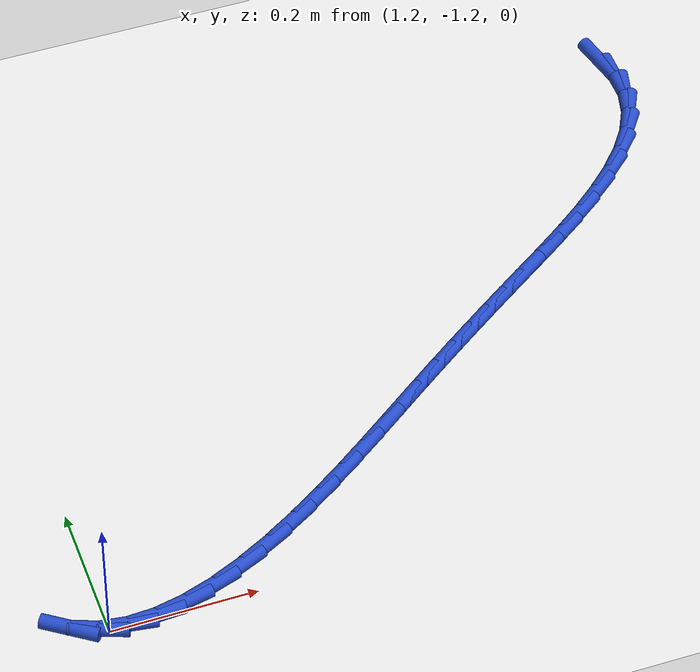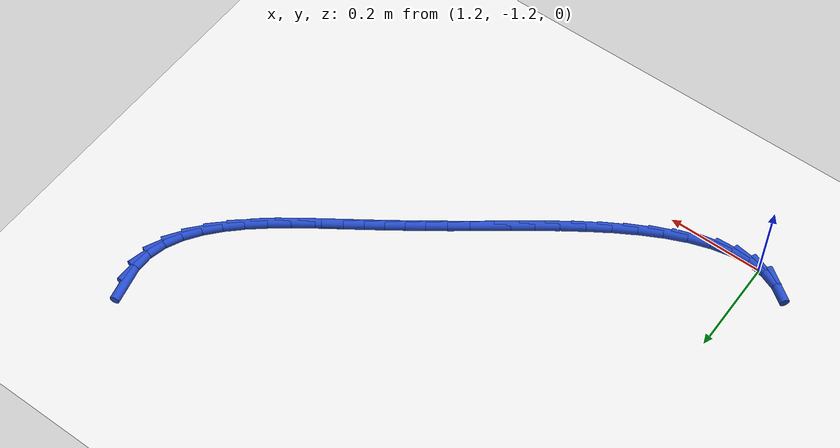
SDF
<sdf version="1.6">
 <world name="default">
  <model name="ground_plane">
   <static>1</static>
   <link name="link">
    <collision name="collision">
     <geometry><plane><normal>0 0 1</normal><size>100 100</size></plane></geometry>
     <surface><friction><ode><mu>100</mu><mu2>50</mu2></ode></friction></surface>
    </collision>
    <visual name="visual">
     <cast_shadows>0</cast_shadows>
     <geometry><plane><normal>0 0 1</normal><size>100 100</size></plane></geometry>
     <material>
      <script><uri>file://media/materials/scripts/gazebo.material</uri><name>Gazebo/WhiteGlow</name></script>
     </material>
    </visual>
   </link>
  </model>
  <model name="line">
   <link name="link_116">
    <pose>2.1670800201792626 -0.4434322571170949 0.01 0 1.57 -1.346856563586588</pose>
    <collision name="collision">
     <geometry><cylinder><radius>0.01</radius><length>0.08</length></cylinder></geometry>
    </collision>
    <visual name="visual">
     <material>
      <script><name>Gazebo/Blue</name><uri>file://media/materials/scripts/gazebo.material</uri></script>
     </material>
     <geometry><cylinder><radius>0.01</radius><length>0.08</length></cylinder></geometry>
    </visual>
   </link>
   <link name="link_117">
    <pose>2.175957787531275 -0.48241088655542563 0.01 0 1.57 -1.5677325985430732</pose>
    <collision name="collision">
     <geometry><cylinder><radius>0.01</radius><length>0.08</length></cylinder></geometry>
    </collision>
    <visual name="visual">
     <material>
      <script><name>Gazebo/Blue</name><uri>file://media/materials/scripts/gazebo.material</uri></script>
     </material>
     <geometry><cylinder><radius>0.01</radius><length>0.08</length></cylinder></geometry>
    </visual>
   </link>
   <link name="link_118">
    <pose>2.1760734694313926 -0.520169306579134 0.01 0 1.57 1.3279155796091364</pose>
    <collision name="collision">
     <geometry><cylinder><radius>0.01</radius><length>0.08</length></cylinder></geometry>
    </collision>
    <visual name="visual">
     <material>
      <script><name>Gazebo/Blue</name><uri>file://media/materials/scripts/gazebo.material</uri></script>
     </material>
     <geometry><cylinder><radius>0.01</radius><length>0.08</length></cylinder></geometry>
    </visual>
   </link>
   <link name="link_119">
    <pose>2.1670470985862735 -0.5565994364035607 0.01 0 1.57 1.1212581006713946</pose>
    <collision name="collision">
     <geometry><cylinder><radius>0.01</radius><length>0.08</length></cylinder></geometry>
    </collision>
    <visual name="visual">
     <material>
      <script><name>Gazebo/Blue</name><uri>file://media/materials/scripts/gazebo.material</uri></script>
     </material>
     <geometry><cylinder><radius>0.01</radius><length>0.08</length></cylinder></geometry>
    </visual>
   </link>
   <link name="link_120">
    <pose>2.1501119889779017 -0.5916991518009619 0.01 0 1.57 0.9608671922395416</pose>
    <collision name="collision">
     <geometry><cylinder><radius>0.01</radius><length>0.08</length></cylinder></geometry>
    </collision>
    <visual name="visual">
     <material>
      <script><name>Gazebo/Blue</name><uri>file://media/materials/scripts/gazebo.material</uri></script>
     </material>
     <geometry><cylinder><radius>0.01</radius><length>0.08</length></cylinder></geometry>
    </visual>
   </link>
   <link name="link_121">
    <pose>2.1265144379985776 -0.6254671812637467 0.01 0 1.57 0.8410192646304357</pose>
    <collision name="collision">
     <geometry><cylinder><radius>0.01</radius><length>0.08</length></cylinder></geometry>
    </collision>
    <visual name="visual">
     <material>
      <script><name>Gazebo/Blue</name><uri>file://media/materials/scripts/gazebo.material</uri></script>
     </material>
     <geometry><cylinder><radius>0.01</radius><length>0.08</length></cylinder></geometry>
    </visual>
   </link>
   <link name="link_122">
    <pose>2.097500743040606 -0.6579022532843242 0.01 0 1.57 0.7530112898569726</pose>
    <collision name="collision">
     <geometry><cylinder><radius>0.01</radius><length>0.08</length></cylinder></geometry>
    </collision>
    <visual name="visual">
     <material>
      <script><name>Gazebo/Blue</name><uri>file://media/materials/scripts/gazebo.material</uri></script>
     </material>
     <geometry><cylinder><radius>0.01</radius><length>0.08</length></cylinder></geometry>
    </visual>
   </link>
   <link name="link_123">
    <pose>2.0643172014962863 -0.6890030963551034 0.01 0 1.57 0.6894207846304432</pose>
    <collision name="collision">
     <geometry><cylinder><radius>0.01</radius><length>0.08</length></cylinder></geometry>
    </collision>
    <visual name="visual">
     <material>
      <script><name>Gazebo/Blue</name><uri>file://media/materials/scripts/gazebo.material</uri></script>
     </material>
     <geometry><cylinder><radius>0.01</radius><length>0.08</length></cylinder></geometry>
    </visual>
   </link>
   <link name="link_124">
    <pose>2.0282101107579202 -0.7187684389684929 0.01 0 1.57 0.6450291097352489</pose>
    <collision name="collision">
     <geometry><cylinder><radius>0.01</radius><length>0.08</length></cylinder></geometry>
    </collision>
    <visual name="visual">
     <material>
      <script><name>Gazebo/Blue</name><uri>file://media/materials/scripts/gazebo.material</uri></script>
     </material>
     <geometry><cylinder><radius>0.01</radius><length>0.08</length></cylinder></geometry>
    </visual>
   </link>
   <link name="link_125">
    <pose>1.9904257682178121 -0.7471970096169016 0.01 0 1.57 0.6166690080853638</pose>
    <collision name="collision">
     <geometry><cylinder><radius>0.01</radius><length>0.08</length></cylinder></geometry>
    </collision>
    <visual name="visual">
     <material>
      <script><name>Gazebo/Blue</name><uri>file://media/materials/scripts/gazebo.material</uri></script>
     </material>
     <geometry><cylinder><radius>0.01</radius><length>0.08</length></cylinder></geometry>
    </visual>
   </link>
   <link name="link_126">
    <pose>1.9522104712682613 -0.7742875367927397 0.01 0 1.57 0.6029904511512321</pose>
    <collision name="collision">
     <geometry><cylinder><radius>0.01</radius><length>0.08</length></cylinder></geometry>
    </collision>
    <visual name="visual">
     <material>
      <script><name>Gazebo/Blue</name><uri>file://media/materials/scripts/gazebo.material</uri></script>
     </material>
     <geometry><cylinder><radius>0.01</radius><length>0.08</length></cylinder></geometry>
    </visual>
   </link>
   <link name="link_127">
    <pose>1.9148105173015693 -0.800038748988415 0.01 0 1.57 0.6030071920287059</pose>
    <collision name="collision">
     <geometry><cylinder><radius>0.01</radius><length>0.08</length></cylinder></geometry>
    </collision>
    <visual name="visual">
     <material>
      <script><name>Gazebo/Blue</name><uri>file://media/materials/scripts/gazebo.material</uri></script>
     </material>
     <geometry><cylinder><radius>0.01</radius><length>0.08</length></cylinder></geometry>
    </visual>
   </link>
   <link name="link_128">
    <pose>1.879288865542419 -0.8244975592141944 0.01 0 1.57 0.60800319354592</pose>
    <collision name="collision">
     <geometry><cylinder><radius>0.01</radius><length>0.08</length></cylinder></geometry>
    </collision>
    <visual name="visual">
     <material>
      <script><name>Gazebo/Blue</name><uri>file://media/materials/scripts/gazebo.material</uri></script>
     </material>
     <geometry><cylinder><radius>0.01</radius><length>0.08</length></cylinder></geometry>
    </visual>
   </link>
   <link name="link_129">
    <pose>1.8454641157342522 -0.8480379201929327 0.01 0 1.57 0.6138529279818523</pose>
    <collision name="collision">
     <geometry><cylinder><radius>0.01</radius><length>0.08</length></cylinder></geometry>
    </collision>
    <visual name="visual">
     <material>
      <script><name>Gazebo/Blue</name><uri>file://media/materials/scripts/gazebo.material</uri></script>
     </material>
     <geometry><cylinder><radius>0.01</radius><length>0.08</length></cylinder></geometry>
    </visual>
   </link>
   <link name="link_130">
    <pose>1.8126376678601914 -0.8711697139054799 0.01 0 1.57 0.6202282509569338</pose>
    <collision name="collision">
     <geometry><cylinder><radius>0.01</radius><length>0.08</length></cylinder></geometry>
    </collision>
    <visual name="visual">
     <material>
      <script><name>Gazebo/Blue</name><uri>file://media/materials/scripts/gazebo.material</uri></script>
     </material>
     <geometry><cylinder><radius>0.01</radius><length>0.08</length></cylinder></geometry>
    </visual>
   </link>
   <link name="link_131">
    <pose>1.7801092349537249 -0.8944032656929313 0.01 0 1.57 0.6267282131596057</pose>
    <collision name="collision">
     <geometry><cylinder><radius>0.01</radius><length>0.08</length></cylinder></geometry>
    </collision>
    <visual name="visual">
     <material>
      <script><name>Gazebo/Blue</name><uri>file://media/materials/scripts/gazebo.material</uri></script>
     </material>
     <geometry><cylinder><radius>0.01</radius><length>0.08</length></cylinder></geometry>
    </visual>
   </link>
   <link name="link_132">
    <pose>1.7471785300483427 -0.9182489008963808 0.01 0 1.57 0.6329459404361825</pose>
    <collision name="collision">
     <geometry><cylinder><radius>0.01</radius><length>0.08</length></cylinder></geometry>
    </collision>
    <visual name="visual">
     <material>
      <script><name>Gazebo/Blue</name><uri>file://media/materials/scripts/gazebo.material</uri></script>
     </material>
     <geometry><cylinder><radius>0.01</radius><length>0.08</length></cylinder></geometry>
    </visual>
   </link>
   <link name="link_133">
    <pose>1.7131452661775324 -0.9432169448569243 0.01 0 1.57 0.6385289949351992</pose>
    <collision name="collision">
     <geometry><cylinder><radius>0.01</radius><length>0.08</length></cylinder></geometry>
    </collision>
    <visual name="visual">
     <material>
      <script><name>Gazebo/Blue</name><uri>file://media/materials/scripts/gazebo.material</uri></script>
     </material>
     <geometry><cylinder><radius>0.01</radius><length>0.08</length></cylinder></geometry>
    </visual>
   </link>
   <link name="link_134">
    <pose>1.6773114704593257 -0.9698149334768281 0.01 0 1.57 0.6407024947586776</pose>
    <collision name="collision">
     <geometry><cylinder><radius>0.01</radius><length>0.08</length></cylinder></geometry>
    </collision>
    <visual name="visual">
     <material>
      <script><name>Gazebo/Blue</name><uri>file://media/materials/scripts/gazebo.material</uri></script>
     </material>
     <geometry><cylinder><radius>0.01</radius><length>0.08</length></cylinder></geometry>
    </visual>
   </link>
   <link name="link_135">
    <pose>1.6393130546463712 -0.9981479321580468 0.01 0 1.57 0.6349048582789478</pose>
    <collision name="collision">
     <geometry><cylinder><radius>0.01</radius><length>0.08</length></cylinder></geometry>
    </collision>
    <visual name="visual">
     <material>
      <script><name>Gazebo/Blue</name><uri>file://media/materials/scripts/gazebo.material</uri></script>
     </material>
     <geometry><cylinder><radius>0.01</radius><length>0.08</length></cylinder></geometry>
    </visual>
   </link>
   <link name="link_136">
    <pose>1.5994655970084426 -1.027501724146859 0.01 0 1.57 0.6212426379238899</pose>
    <collision name="collision">
     <geometry><cylinder><radius>0.01</radius><length>0.08</length></cylinder></geometry>
    </collision>
    <visual name="visual">
     <material>
      <script><name>Gazebo/Blue</name><uri>file://media/materials/scripts/gazebo.material</uri></script>
     </material>
     <geometry><cylinder><radius>0.01</radius><length>0.08</length></cylinder></geometry>
    </visual>
   </link>
   <link name="link_137">
    <pose>1.558167305215936 -1.0570624897346308 0.01 0 1.57 0.5996798136069784</pose>
    <collision name="collision">
     <geometry><cylinder><radius>0.01</radius><length>0.08</length></cylinder></geometry>
    </collision>
    <visual name="visual">
     <material>
      <script><name>Gazebo/Blue</name><uri>file://media/materials/scripts/gazebo.material</uri></script>
     </material>
     <geometry><cylinder><radius>0.01</radius><length>0.08</length></cylinder></geometry>
    </visual>
   </link>
   <link name="link_138">
    <pose>1.5158163869392463 -1.086016409212726 0.01 0 1.57 0.569475461764689</pose>
    <collision name="collision">
     <geometry><cylinder><radius>0.01</radius><length>0.08</length></cylinder></geometry>
    </collision>
    <visual name="visual">
     <material>
      <script><name>Gazebo/Blue</name><uri>file://media/materials/scripts/gazebo.material</uri></script>
     </material>
     <geometry><cylinder><radius>0.01</radius><length>0.08</length></cylinder></geometry>
    </visual>
   </link>
   <link name="link_139">
    <pose>1.4728110498487705 -1.11354966287251 0.01 0 1.57 0.5291579692595917</pose>
    <collision name="collision">
     <geometry><cylinder><radius>0.01</radius><length>0.08</length></cylinder></geometry>
    </collision>
    <visual name="visual">
     <material>
      <script><name>Gazebo/Blue</name><uri>file://media/materials/scripts/gazebo.material</uri></script>
     </material>
     <geometry><cylinder><radius>0.01</radius><length>0.08</length></cylinder></geometry>
    </visual>
   </link>
   <link name="link_140">
    <pose>1.4295495016149027 -1.1388484310053477 0.01 0 1.57 0.4763797038067081</pose>
    <collision name="collision">
     <geometry><cylinder><radius>0.01</radius><length>0.08</length></cylinder></geometry>
    </collision>
    <visual name="visual">
     <material>
      <script><name>Gazebo/Blue</name><uri>file://media/materials/scripts/gazebo.material</uri></script>
     </material>
     <geometry><cylinder><radius>0.01</radius><length>0.08</length></cylinder></geometry>
    </visual>
   </link>
   <link name="link_141">
    <pose>1.3864299499080386 -1.161098893902604 0.01 0 1.57 0.407667165331636</pose>
    <collision name="collision">
     <geometry><cylinder><radius>0.01</radius><length>0.08</length></cylinder></geometry>
    </collision>
    <visual name="visual">
     <material>
      <script><name>Gazebo/Blue</name><uri>file://media/materials/scripts/gazebo.material</uri></script>
     </material>
     <geometry><cylinder><radius>0.01</radius><length>0.08</length></cylinder></geometry>
    </visual>
   </link>
   <link name="link_142">
    <pose>1.343850602398574 -1.1794872318556429 0.01 0 1.57 0.31811689192727804</pose>
    <collision name="collision">
     <geometry><cylinder><radius>0.01</radius><length>0.08</length></cylinder></geometry>
    </collision>
    <visual name="visual">
     <material>
      <script><name>Gazebo/Blue</name><uri>file://media/materials/scripts/gazebo.material</uri></script>
     </material>
     <geometry><cylinder><radius>0.01</radius><length>0.08</length></cylinder></geometry>
    </visual>
   </link>
   <link name="link_143">
    <pose>1.3022096667569043 -1.1931996251558306 0.01 0 1.57 0.20125180256979674</pose>
    <collision name="collision">
     <geometry><cylinder><radius>0.01</radius><length>0.08</length></cylinder></geometry>
    </collision>
    <visual name="visual">
     <material>
      <script><name>Gazebo/Blue</name><uri>file://media/materials/scripts/gazebo.material</uri></script>
     </material>
     <geometry><cylinder><radius>0.01</radius><length>0.08</length></cylinder></geometry>
    </visual>
   </link>
   <link name="link_144">
    <pose>1.2619053506534257 -1.2014222540945305 0.01 0 1.57 0.04971451964806815</pose>
    <collision name="collision">
     <geometry><cylinder><radius>0.01</radius><length>0.08</length></cylinder></geometry>
    </collision>
    <visual name="visual">
     <material>
      <script><name>Gazebo/Blue</name><uri>file://media/materials/scripts/gazebo.material</uri></script>
     </material>
     <geometry><cylinder><radius>0.01</radius><length>0.08</length></cylinder></geometry>
    </visual>
   </link>
   <link name="link_145">
    <pose>1.2233358617585341 -1.2033412989631087 0.01 0 1.57 -0.14171284329752343</pose>
    <collision name="collision">
     <geometry><cylinder><radius>0.01</radius><length>0.08</length></cylinder></geometry>
    </collision>
    <visual name="visual">
     <material>
      <script><name>Gazebo/Blue</name><uri>file://media/materials/scripts/gazebo.material</uri></script>
     </material>
     <geometry><cylinder><radius>0.01</radius><length>0.08</length></cylinder></geometry>
    </visual>
   </link>
   <link name="link_146">
    <pose>1.1868994077426236 -1.1981429400529293 0.01 0 1.57 -0.3694615036196649</pose>
    <collision name="collision">
     <geometry><cylinder><radius>0.01</radius><length>0.08</length></cylinder></geometry>
    </collision>
    <visual name="visual">
     <material>
      <script><name>Gazebo/Blue</name><uri>file://media/materials/scripts/gazebo.material</uri></script>
     </material>
     <geometry><cylinder><radius>0.01</radius><length>0.08</length></cylinder></geometry>
    </visual>
   </link>
   <link name="link_147">
    <pose>1.15299419627609 -1.185013357655357 0.01 0 1.57 -0.6148650853318053</pose>
    <collision name="collision">
     <geometry><cylinder><radius>0.01</radius><length>0.08</length></cylinder></geometry>
    </collision>
    <visual name="visual">
     <material>
      <script><name>Gazebo/Blue</name><uri>file://media/materials/scripts/gazebo.material</uri></script>
     </material>
     <geometry><cylinder><radius>0.01</radius><length>0.08</length></cylinder></geometry>
    </visual>
   </link>
  </model>
 </world>
</sdf>
